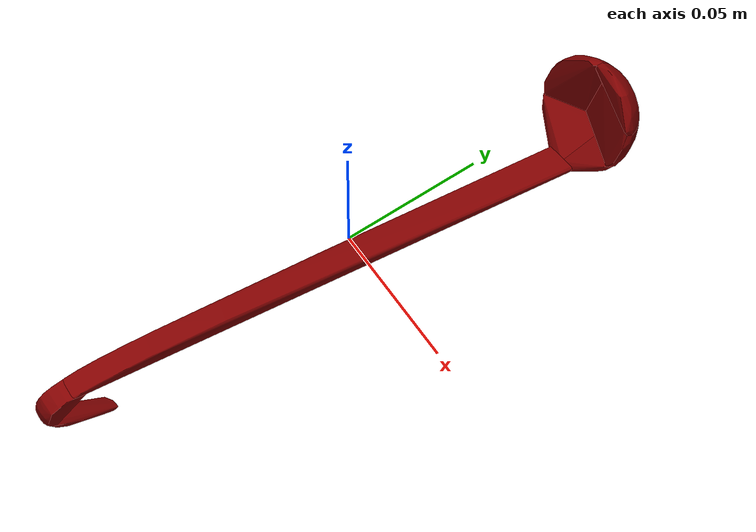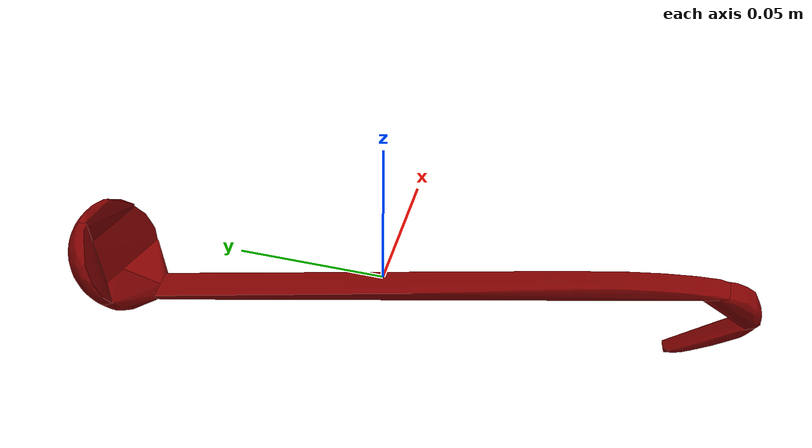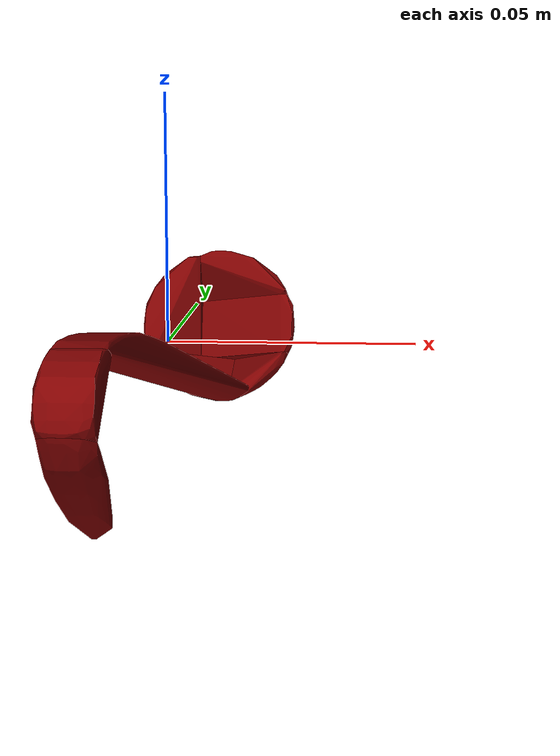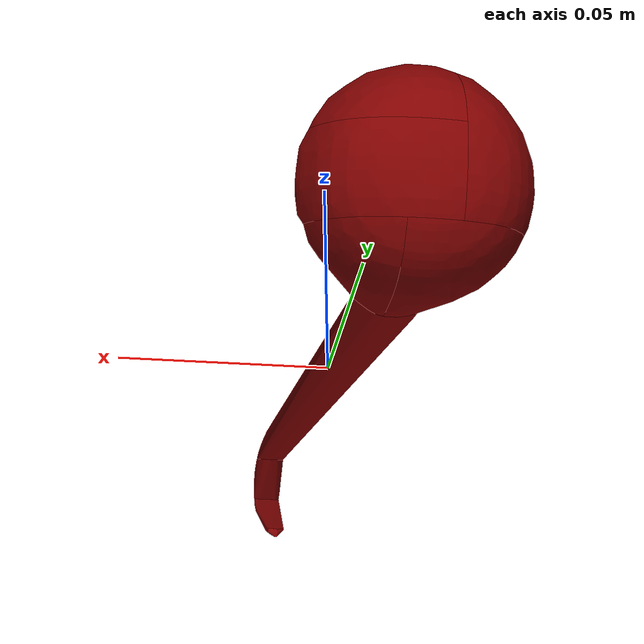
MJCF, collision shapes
<mujoco model="ladle_3">
  <asset>
    <mesh file="visual/model_normalized_0.obj" name="model_normalized_0_vis" scale="0.22000000000000003 0.22000000000000003 0.22000000000000003" refquat="0.5879378012096815 -0.39284747919355256 -0.39284747919355273 0.5879378012096818"/>
    <material name="lambert1.006" specular="0.5" shininess="1.0" rgba="0.154263 0.154263 0.154263 1.0"/>
    <mesh file="collision/collision_mesh_collision_0.obj" name="ladle_collision_mesh_0" scale="0.22000000000000003 0.22000000000000003 0.22000000000000003" refquat="0.5879378012096815 -0.39284747919355256 -0.39284747919355273 0.5879378012096818"/>
    <mesh file="collision/collision_mesh_collision_1.obj" name="ladle_collision_mesh_1" scale="0.22000000000000003 0.22000000000000003 0.22000000000000003" refquat="0.5879378012096815 -0.39284747919355256 -0.39284747919355273 0.5879378012096818"/>
    <mesh file="collision/collision_mesh_collision_2.obj" name="ladle_collision_mesh_2" scale="0.22000000000000003 0.22000000000000003 0.22000000000000003" refquat="0.5879378012096815 -0.39284747919355256 -0.39284747919355273 0.5879378012096818"/>
    <mesh file="collision/collision_mesh_collision_3.obj" name="ladle_collision_mesh_3" scale="0.22000000000000003 0.22000000000000003 0.22000000000000003" refquat="0.5879378012096815 -0.39284747919355256 -0.39284747919355273 0.5879378012096818"/>
    <mesh file="collision/collision_mesh_collision_4.obj" name="ladle_collision_mesh_4" scale="0.22000000000000003 0.22000000000000003 0.22000000000000003" refquat="0.5879378012096815 -0.39284747919355256 -0.39284747919355273 0.5879378012096818"/>
    <mesh file="collision/collision_mesh_collision_5.obj" name="ladle_collision_mesh_5" scale="0.22000000000000003 0.22000000000000003 0.22000000000000003" refquat="0.5879378012096815 -0.39284747919355256 -0.39284747919355273 0.5879378012096818"/>
    <mesh file="collision/collision_mesh_collision_6.obj" name="ladle_collision_mesh_6" scale="0.22000000000000003 0.22000000000000003 0.22000000000000003" refquat="0.5879378012096815 -0.39284747919355256 -0.39284747919355273 0.5879378012096818"/>
    <mesh file="collision/collision_mesh_collision_7.obj" name="ladle_collision_mesh_7" scale="0.22000000000000003 0.22000000000000003 0.22000000000000003" refquat="0.5879378012096815 -0.39284747919355256 -0.39284747919355273 0.5879378012096818"/>
  </asset>
  <default>
    <default class="region">
      <geom group="1" conaffinity="0" contype="0" rgba="0 1 0 0"/>
    </default>
    <default class="collision">
      <geom group="0" rgba="0.5 0 0 0.5" density="1000.0"/>
    </default>
  </default>
  <worldbody>
    <body>
      <body name="object">
        <geom solimp="0.998 0.998 0.001" solref="0.001 1" density="100" friction="0.95 0.3 0.1" type="mesh" mesh="model_normalized_0_vis" conaffinity="0" contype="0" group="1" material="lambert1.006"/>
        <geom class="region" name="reg_bbox" type="box" pos="0.0 -0.00033585076187935605 -0.00711789153134607" size="0.020458710800000002 0.11529515990388554 0.025595538826521862"/>
        <geom mesh="ladle_collision_mesh_0" type="mesh" class="collision"/>
        <geom mesh="ladle_collision_mesh_1" type="mesh" class="collision"/>
        <geom mesh="ladle_collision_mesh_2" type="mesh" class="collision"/>
        <geom mesh="ladle_collision_mesh_3" type="mesh" class="collision"/>
        <geom mesh="ladle_collision_mesh_4" type="mesh" class="collision"/>
        <geom mesh="ladle_collision_mesh_5" type="mesh" class="collision"/>
        <geom mesh="ladle_collision_mesh_6" type="mesh" class="collision"/>
        <geom mesh="ladle_collision_mesh_7" type="mesh" class="collision"/>
      </body>
    </body>
  </worldbody>
</mujoco>
